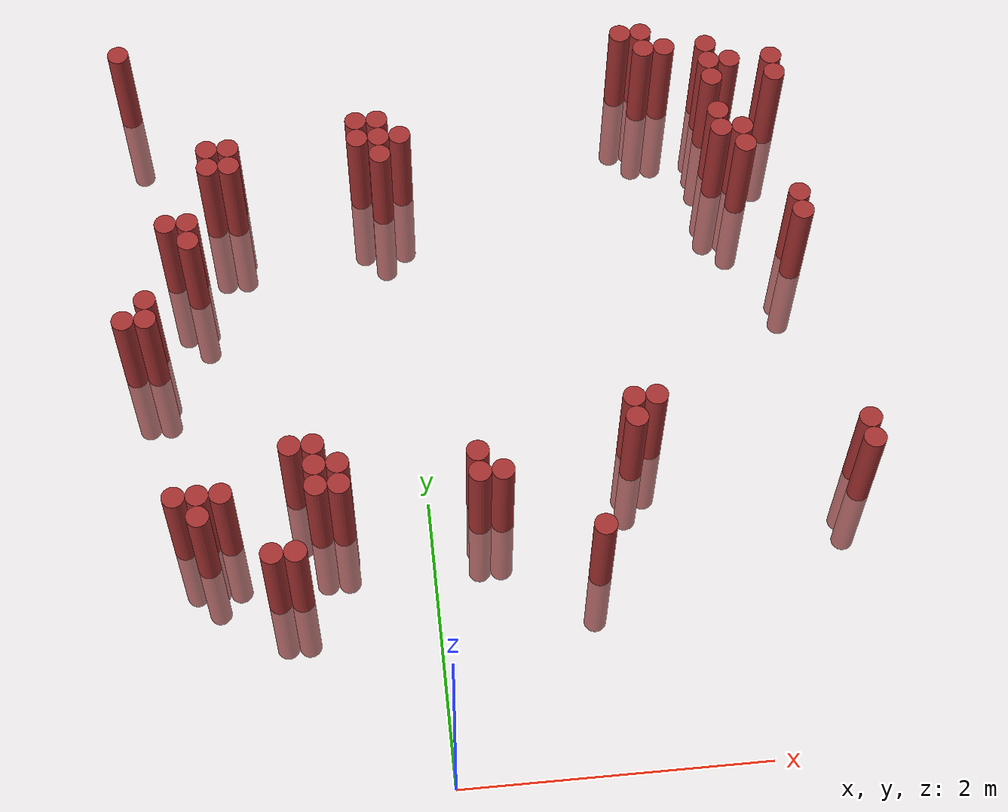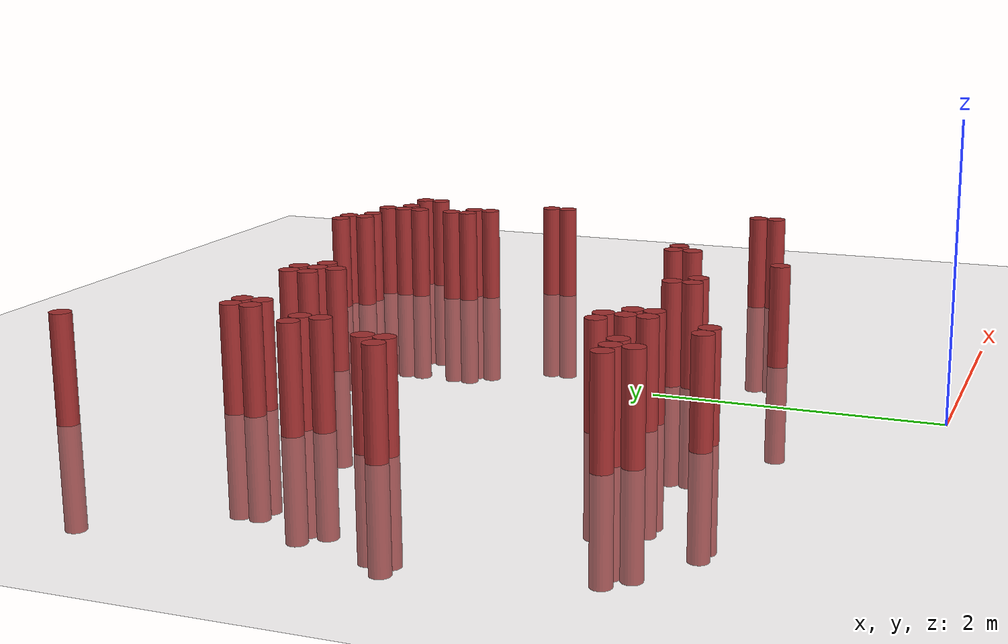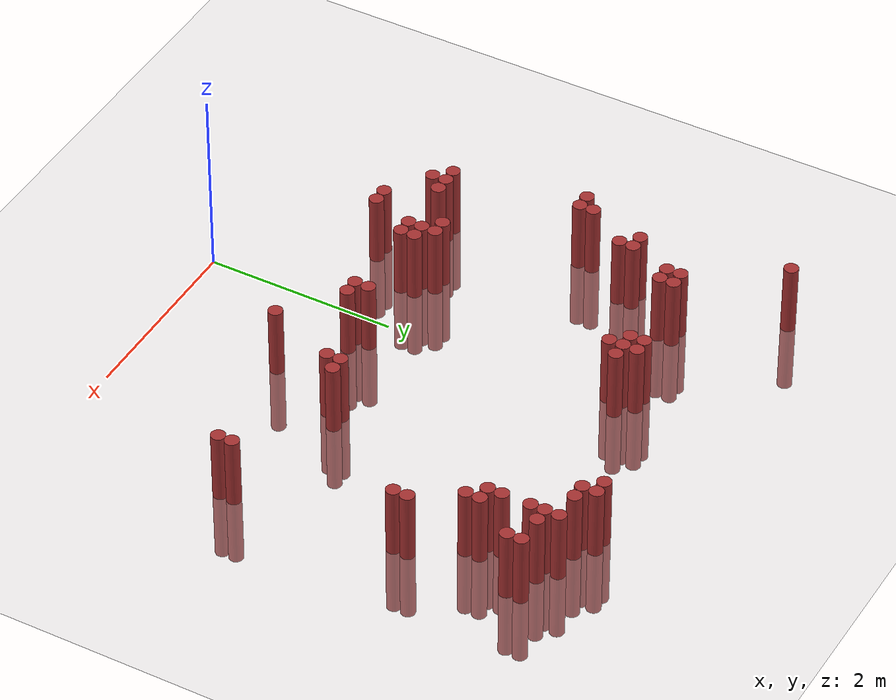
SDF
<sdf version="1.6">
 <world name="default">
  <model name="ground_plane">
   <static>1</static>
   <link name="link">
    <collision name="collision">
     <geometry><plane><normal>0 0 1</normal><size>100 100</size></plane></geometry>
     <surface><friction><ode><mu>100</mu><mu2>50</mu2></ode></friction></surface>
    </collision>
    <visual name="visual">
     <cast_shadows>0</cast_shadows>
     <geometry><plane><normal>0 0 1</normal><size>100 100</size></plane></geometry>
     <material>
      <script><uri>file://media/materials/scripts/gazebo.material</uri><name>Gazebo/Grey</name></script>
     </material>
    </visual>
   </link>
  </model>
  <model name="unit_cylinder_321">
   <static>1</static>
   <pose>-1.925000 3.175000 0.000000 0.000000 0.000000 0.000000</pose>
   <link name="link">
    <inertial>
     <mass>1</mass>
     <inertia><ixx>0.145833</ixx><ixy>0</ixy><ixz>0</ixz><iyy>0.145833</iyy><iyz>0</iyz><izz>0.125</izz></inertia>
    </inertial>
    <collision name="collision">
     <geometry><cylinder><radius>0.075000</radius><length>1.5</length></cylinder></geometry>
    </collision>
    <visual name="visual">
     <geometry><cylinder><radius>0.075000</radius><length>1.5</length></cylinder></geometry>
     <material>
      <ambient>0.648000 0.192000 0.192000 1</ambient>
      <diffuse>0.648000 0.192000 0.192000 1</diffuse>
     </material>
     <material>
      <script><name>Gazebo/Grey</name><uri>file://media/materials/scripts/gazebo.material</uri></script>
     </material>
    </visual>
   </link>
  </model>
  <model name="unit_cylinder_322">
   <static>1</static>
   <pose>-1.925000 5.425000 0.000000 0.000000 0.000000 0.000000</pose>
   <link name="link">
    <inertial>
     <mass>1</mass>
     <inertia><ixx>0.145833</ixx><ixy>0</ixy><ixz>0</ixz><iyy>0.145833</iyy><iyz>0</iyz><izz>0.125</izz></inertia>
    </inertial>
    <collision name="collision">
     <geometry><cylinder><radius>0.075000</radius><length>1.5</length></cylinder></geometry>
    </collision>
    <visual name="visual">
     <geometry><cylinder><radius>0.075000</radius><length>1.5</length></cylinder></geometry>
     <material>
      <ambient>0.648000 0.192000 0.192000 1</ambient>
      <diffuse>0.648000 0.192000 0.192000 1</diffuse>
     </material>
     <material>
      <script><name>Gazebo/Grey</name><uri>file://media/materials/scripts/gazebo.material</uri></script>
     </material>
    </visual>
   </link>
  </model>
  <model name="unit_cylinder_323">
   <static>1</static>
   <pose>-1.775000 3.175000 0.000000 0.000000 0.000000 0.000000</pose>
   <link name="link">
    <inertial>
     <mass>1</mass>
     <inertia><ixx>0.145833</ixx><ixy>0</ixy><ixz>0</ixz><iyy>0.145833</iyy><iyz>0</iyz><izz>0.125</izz></inertia>
    </inertial>
    <collision name="collision">
     <geometry><cylinder><radius>0.075000</radius><length>1.5</length></cylinder></geometry>
    </collision>
    <visual name="visual">
     <geometry><cylinder><radius>0.075000</radius><length>1.5</length></cylinder></geometry>
     <material>
      <ambient>0.648000 0.192000 0.192000 1</ambient>
      <diffuse>0.648000 0.192000 0.192000 1</diffuse>
     </material>
     <material>
      <script><name>Gazebo/Grey</name><uri>file://media/materials/scripts/gazebo.material</uri></script>
     </material>
    </visual>
   </link>
  </model>
  <model name="unit_cylinder_324">
   <static>1</static>
   <pose>-1.775000 3.325000 0.000000 0.000000 0.000000 0.000000</pose>
   <link name="link">
    <inertial>
     <mass>1</mass>
     <inertia><ixx>0.145833</ixx><ixy>0</ixy><ixz>0</ixz><iyy>0.145833</iyy><iyz>0</iyz><izz>0.125</izz></inertia>
    </inertial>
    <collision name="collision">
     <geometry><cylinder><radius>0.075000</radius><length>1.5</length></cylinder></geometry>
    </collision>
    <visual name="visual">
     <geometry><cylinder><radius>0.075000</radius><length>1.5</length></cylinder></geometry>
     <material>
      <ambient>0.648000 0.192000 0.192000 1</ambient>
      <diffuse>0.648000 0.192000 0.192000 1</diffuse>
     </material>
     <material>
      <script><name>Gazebo/Grey</name><uri>file://media/materials/scripts/gazebo.material</uri></script>
     </material>
    </visual>
   </link>
  </model>
  <model name="unit_cylinder_325">
   <static>1</static>
   <pose>-1.625000 1.825000 0.000000 0.000000 0.000000 0.000000</pose>
   <link name="link">
    <inertial>
     <mass>1</mass>
     <inertia><ixx>0.145833</ixx><ixy>0</ixy><ixz>0</ixz><iyy>0.145833</iyy><iyz>0</iyz><izz>0.125</izz></inertia>
    </inertial>
    <collision name="collision">
     <geometry><cylinder><radius>0.075000</radius><length>1.5</length></cylinder></geometry>
    </collision>
    <visual name="visual">
     <geometry><cylinder><radius>0.075000</radius><length>1.5</length></cylinder></geometry>
     <material>
      <ambient>0.648000 0.192000 0.192000 1</ambient>
      <diffuse>0.648000 0.192000 0.192000 1</diffuse>
     </material>
     <material>
      <script><name>Gazebo/Grey</name><uri>file://media/materials/scripts/gazebo.material</uri></script>
     </material>
    </visual>
   </link>
  </model>
  <model name="unit_cylinder_326">
   <static>1</static>
   <pose>-1.625000 3.925000 0.000000 0.000000 0.000000 0.000000</pose>
   <link name="link">
    <inertial>
     <mass>1</mass>
     <inertia><ixx>0.145833</ixx><ixy>0</ixy><ixz>0</ixz><iyy>0.145833</iyy><iyz>0</iyz><izz>0.125</izz></inertia>
    </inertial>
    <collision name="collision">
     <geometry><cylinder><radius>0.075000</radius><length>1.5</length></cylinder></geometry>
    </collision>
    <visual name="visual">
     <geometry><cylinder><radius>0.075000</radius><length>1.5</length></cylinder></geometry>
     <material>
      <ambient>0.648000 0.192000 0.192000 1</ambient>
      <diffuse>0.648000 0.192000 0.192000 1</diffuse>
     </material>
     <material>
      <script><name>Gazebo/Grey</name><uri>file://media/materials/scripts/gazebo.material</uri></script>
     </material>
    </visual>
   </link>
  </model>
  <model name="unit_cylinder_327">
   <static>1</static>
   <pose>-1.475000 1.675000 0.000000 0.000000 0.000000 0.000000</pose>
   <link name="link">
    <inertial>
     <mass>1</mass>
     <inertia><ixx>0.145833</ixx><ixy>0</ixy><ixz>0</ixz><iyy>0.145833</iyy><iyz>0</iyz><izz>0.125</izz></inertia>
    </inertial>
    <collision name="collision">
     <geometry><cylinder><radius>0.075000</radius><length>1.5</length></cylinder></geometry>
    </collision>
    <visual name="visual">
     <geometry><cylinder><radius>0.075000</radius><length>1.5</length></cylinder></geometry>
     <material>
      <ambient>0.648000 0.192000 0.192000 1</ambient>
      <diffuse>0.648000 0.192000 0.192000 1</diffuse>
     </material>
     <material>
      <script><name>Gazebo/Grey</name><uri>file://media/materials/scripts/gazebo.material</uri></script>
     </material>
    </visual>
   </link>
  </model>
  <model name="unit_cylinder_328">
   <static>1</static>
   <pose>-1.475000 1.825000 0.000000 0.000000 0.000000 0.000000</pose>
   <link name="link">
    <inertial>
     <mass>1</mass>
     <inertia><ixx>0.145833</ixx><ixy>0</ixy><ixz>0</ixz><iyy>0.145833</iyy><iyz>0</iyz><izz>0.125</izz></inertia>
    </inertial>
    <collision name="collision">
     <geometry><cylinder><radius>0.075000</radius><length>1.5</length></cylinder></geometry>
    </collision>
    <visual name="visual">
     <geometry><cylinder><radius>0.075000</radius><length>1.5</length></cylinder></geometry>
     <material>
      <ambient>0.648000 0.192000 0.192000 1</ambient>
      <diffuse>0.648000 0.192000 0.192000 1</diffuse>
     </material>
     <material>
      <script><name>Gazebo/Grey</name><uri>file://media/materials/scripts/gazebo.material</uri></script>
     </material>
    </visual>
   </link>
  </model>
  <model name="unit_cylinder_329">
   <static>1</static>
   <pose>-1.475000 3.775000 0.000000 0.000000 0.000000 0.000000</pose>
   <link name="link">
    <inertial>
     <mass>1</mass>
     <inertia><ixx>0.145833</ixx><ixy>0</ixy><ixz>0</ixz><iyy>0.145833</iyy><iyz>0</iyz><izz>0.125</izz></inertia>
    </inertial>
    <collision name="collision">
     <geometry><cylinder><radius>0.075000</radius><length>1.5</length></cylinder></geometry>
    </collision>
    <visual name="visual">
     <geometry><cylinder><radius>0.075000</radius><length>1.5</length></cylinder></geometry>
     <material>
      <ambient>0.648000 0.192000 0.192000 1</ambient>
      <diffuse>0.648000 0.192000 0.192000 1</diffuse>
     </material>
     <material>
      <script><name>Gazebo/Grey</name><uri>file://media/materials/scripts/gazebo.material</uri></script>
     </material>
    </visual>
   </link>
  </model>
  <model name="unit_cylinder_330">
   <static>1</static>
   <pose>-1.475000 3.925000 0.000000 0.000000 0.000000 0.000000</pose>
   <link name="link">
    <inertial>
     <mass>1</mass>
     <inertia><ixx>0.145833</ixx><ixy>0</ixy><ixz>0</ixz><iyy>0.145833</iyy><iyz>0</iyz><izz>0.125</izz></inertia>
    </inertial>
    <collision name="collision">
     <geometry><cylinder><radius>0.075000</radius><length>1.5</length></cylinder></geometry>
    </collision>
    <visual name="visual">
     <geometry><cylinder><radius>0.075000</radius><length>1.5</length></cylinder></geometry>
     <material>
      <ambient>0.648000 0.192000 0.192000 1</ambient>
      <diffuse>0.648000 0.192000 0.192000 1</diffuse>
     </material>
     <material>
      <script><name>Gazebo/Grey</name><uri>file://media/materials/scripts/gazebo.material</uri></script>
     </material>
    </visual>
   </link>
  </model>
  <model name="unit_cylinder_335">
   <static>1</static>
   <pose>-1.325000 1.825000 0.000000 0.000000 0.000000 0.000000</pose>
   <link name="link">
    <inertial>
     <mass>1</mass>
     <inertia><ixx>0.145833</ixx><ixy>0</ixy><ixz>0</ixz><iyy>0.145833</iyy><iyz>0</iyz><izz>0.125</izz></inertia>
    </inertial>
    <collision name="collision">
     <geometry><cylinder><radius>0.075000</radius><length>1.5</length></cylinder></geometry>
    </collision>
    <visual name="visual">
     <geometry><cylinder><radius>0.075000</radius><length>1.5</length></cylinder></geometry>
     <material>
      <ambient>0.648000 0.192000 0.192000 1</ambient>
      <diffuse>0.648000 0.192000 0.192000 1</diffuse>
     </material>
     <material>
      <script><name>Gazebo/Grey</name><uri>file://media/materials/scripts/gazebo.material</uri></script>
     </material>
    </visual>
   </link>
  </model>
  <model name="unit_cylinder_336">
   <static>1</static>
   <pose>-1.325000 4.375000 0.000000 0.000000 0.000000 0.000000</pose>
   <link name="link">
    <inertial>
     <mass>1</mass>
     <inertia><ixx>0.145833</ixx><ixy>0</ixy><ixz>0</ixz><iyy>0.145833</iyy><iyz>0</iyz><izz>0.125</izz></inertia>
    </inertial>
    <collision name="collision">
     <geometry><cylinder><radius>0.075000</radius><length>1.5</length></cylinder></geometry>
    </collision>
    <visual name="visual">
     <geometry><cylinder><radius>0.075000</radius><length>1.5</length></cylinder></geometry>
     <material>
      <ambient>0.648000 0.192000 0.192000 1</ambient>
      <diffuse>0.648000 0.192000 0.192000 1</diffuse>
     </material>
     <material>
      <script><name>Gazebo/Grey</name><uri>file://media/materials/scripts/gazebo.material</uri></script>
     </material>
    </visual>
   </link>
  </model>
  <model name="unit_cylinder_337">
   <static>1</static>
   <pose>-1.325000 4.525000 0.000000 0.000000 0.000000 0.000000</pose>
   <link name="link">
    <inertial>
     <mass>1</mass>
     <inertia><ixx>0.145833</ixx><ixy>0</ixy><ixz>0</ixz><iyy>0.145833</iyy><iyz>0</iyz><izz>0.125</izz></inertia>
    </inertial>
    <collision name="collision">
     <geometry><cylinder><radius>0.075000</radius><length>1.5</length></cylinder></geometry>
    </collision>
    <visual name="visual">
     <geometry><cylinder><radius>0.075000</radius><length>1.5</length></cylinder></geometry>
     <material>
      <ambient>0.648000 0.192000 0.192000 1</ambient>
      <diffuse>0.648000 0.192000 0.192000 1</diffuse>
     </material>
     <material>
      <script><name>Gazebo/Grey</name><uri>file://media/materials/scripts/gazebo.material</uri></script>
     </material>
    </visual>
   </link>
  </model>
  <model name="unit_cylinder_341">
   <static>1</static>
   <pose>-1.175000 4.375000 0.000000 0.000000 0.000000 0.000000</pose>
   <link name="link">
    <inertial>
     <mass>1</mass>
     <inertia><ixx>0.145833</ixx><ixy>0</ixy><ixz>0</ixz><iyy>0.145833</iyy><iyz>0</iyz><izz>0.125</izz></inertia>
    </inertial>
    <collision name="collision">
     <geometry><cylinder><radius>0.075000</radius><length>1.5</length></cylinder></geometry>
    </collision>
    <visual name="visual">
     <geometry><cylinder><radius>0.075000</radius><length>1.5</length></cylinder></geometry>
     <material>
      <ambient>0.648000 0.192000 0.192000 1</ambient>
      <diffuse>0.648000 0.192000 0.192000 1</diffuse>
     </material>
     <material>
      <script><name>Gazebo/Grey</name><uri>file://media/materials/scripts/gazebo.material</uri></script>
     </material>
    </visual>
   </link>
  </model>
  <model name="unit_cylinder_342">
   <static>1</static>
   <pose>-1.175000 4.525000 0.000000 0.000000 0.000000 0.000000</pose>
   <link name="link">
    <inertial>
     <mass>1</mass>
     <inertia><ixx>0.145833</ixx><ixy>0</ixy><ixz>0</ixz><iyy>0.145833</iyy><iyz>0</iyz><izz>0.125</izz></inertia>
    </inertial>
    <collision name="collision">
     <geometry><cylinder><radius>0.075000</radius><length>1.5</length></cylinder></geometry>
    </collision>
    <visual name="visual">
     <geometry><cylinder><radius>0.075000</radius><length>1.5</length></cylinder></geometry>
     <material>
      <ambient>0.648000 0.192000 0.192000 1</ambient>
      <diffuse>0.648000 0.192000 0.192000 1</diffuse>
     </material>
     <material>
      <script><name>Gazebo/Grey</name><uri>file://media/materials/scripts/gazebo.material</uri></script>
     </material>
    </visual>
   </link>
  </model>
  <model name="unit_cylinder_346">
   <static>1</static>
   <pose>-1.025000 1.375000 0.000000 0.000000 0.000000 0.000000</pose>
   <link name="link">
    <inertial>
     <mass>1</mass>
     <inertia><ixx>0.145833</ixx><ixy>0</ixy><ixz>0</ixz><iyy>0.145833</iyy><iyz>0</iyz><izz>0.125</izz></inertia>
    </inertial>
    <collision name="collision">
     <geometry><cylinder><radius>0.075000</radius><length>1.5</length></cylinder></geometry>
    </collision>
    <visual name="visual">
     <geometry><cylinder><radius>0.075000</radius><length>1.5</length></cylinder></geometry>
     <material>
      <ambient>0.648000 0.192000 0.192000 1</ambient>
      <diffuse>0.648000 0.192000 0.192000 1</diffuse>
     </material>
     <material>
      <script><name>Gazebo/Grey</name><uri>file://media/materials/scripts/gazebo.material</uri></script>
     </material>
    </visual>
   </link>
  </model>
  <model name="unit_cylinder_351">
   <static>1</static>
   <pose>-0.875000 1.375000 0.000000 0.000000 0.000000 0.000000</pose>
   <link name="link">
    <inertial>
     <mass>1</mass>
     <inertia><ixx>0.145833</ixx><ixy>0</ixy><ixz>0</ixz><iyy>0.145833</iyy><iyz>0</iyz><izz>0.125</izz></inertia>
    </inertial>
    <collision name="collision">
     <geometry><cylinder><radius>0.075000</radius><length>1.5</length></cylinder></geometry>
    </collision>
    <visual name="visual">
     <geometry><cylinder><radius>0.075000</radius><length>1.5</length></cylinder></geometry>
     <material>
      <ambient>0.648000 0.192000 0.192000 1</ambient>
      <diffuse>0.648000 0.192000 0.192000 1</diffuse>
     </material>
     <material>
      <script><name>Gazebo/Grey</name><uri>file://media/materials/scripts/gazebo.material</uri></script>
     </material>
    </visual>
   </link>
  </model>
  <model name="unit_cylinder_352">
   <static>1</static>
   <pose>-0.875000 2.125000 0.000000 0.000000 0.000000 0.000000</pose>
   <link name="link">
    <inertial>
     <mass>1</mass>
     <inertia><ixx>0.145833</ixx><ixy>0</ixy><ixz>0</ixz><iyy>0.145833</iyy><iyz>0</iyz><izz>0.125</izz></inertia>
    </inertial>
    <collision name="collision">
     <geometry><cylinder><radius>0.075000</radius><length>1.5</length></cylinder></geometry>
    </collision>
    <visual name="visual">
     <geometry><cylinder><radius>0.075000</radius><length>1.5</length></cylinder></geometry>
     <material>
      <ambient>0.648000 0.192000 0.192000 1</ambient>
      <diffuse>0.648000 0.192000 0.192000 1</diffuse>
     </material>
     <material>
      <script><name>Gazebo/Grey</name><uri>file://media/materials/scripts/gazebo.material</uri></script>
     </material>
    </visual>
   </link>
  </model>
  <model name="unit_cylinder_355">
   <static>1</static>
   <pose>-0.725000 1.825000 0.000000 0.000000 0.000000 0.000000</pose>
   <link name="link">
    <inertial>
     <mass>1</mass>
     <inertia><ixx>0.145833</ixx><ixy>0</ixy><ixz>0</ixz><iyy>0.145833</iyy><iyz>0</iyz><izz>0.125</izz></inertia>
    </inertial>
    <collision name="collision">
     <geometry><cylinder><radius>0.075000</radius><length>1.5</length></cylinder></geometry>
    </collision>
    <visual name="visual">
     <geometry><cylinder><radius>0.075000</radius><length>1.5</length></cylinder></geometry>
     <material>
      <ambient>0.648000 0.192000 0.192000 1</ambient>
      <diffuse>0.648000 0.192000 0.192000 1</diffuse>
     </material>
     <material>
      <script><name>Gazebo/Grey</name><uri>file://media/materials/scripts/gazebo.material</uri></script>
     </material>
    </visual>
   </link>
  </model>
  <model name="unit_cylinder_356">
   <static>1</static>
   <pose>-0.725000 1.975000 0.000000 0.000000 0.000000 0.000000</pose>
   <link name="link">
    <inertial>
     <mass>1</mass>
     <inertia><ixx>0.145833</ixx><ixy>0</ixy><ixz>0</ixz><iyy>0.145833</iyy><iyz>0</iyz><izz>0.125</izz></inertia>
    </inertial>
    <collision name="collision">
     <geometry><cylinder><radius>0.075000</radius><length>1.5</length></cylinder></geometry>
    </collision>
    <visual name="visual">
     <geometry><cylinder><radius>0.075000</radius><length>1.5</length></cylinder></geometry>
     <material>
      <ambient>0.648000 0.192000 0.192000 1</ambient>
      <diffuse>0.648000 0.192000 0.192000 1</diffuse>
     </material>
     <material>
      <script><name>Gazebo/Grey</name><uri>file://media/materials/scripts/gazebo.material</uri></script>
     </material>
    </visual>
   </link>
  </model>
  <model name="unit_cylinder_357">
   <static>1</static>
   <pose>-0.725000 2.125000 0.000000 0.000000 0.000000 0.000000</pose>
   <link name="link">
    <inertial>
     <mass>1</mass>
     <inertia><ixx>0.145833</ixx><ixy>0</ixy><ixz>0</ixz><iyy>0.145833</iyy><iyz>0</iyz><izz>0.125</izz></inertia>
    </inertial>
    <collision name="collision">
     <geometry><cylinder><radius>0.075000</radius><length>1.5</length></cylinder></geometry>
    </collision>
    <visual name="visual">
     <geometry><cylinder><radius>0.075000</radius><length>1.5</length></cylinder></geometry>
     <material>
      <ambient>0.648000 0.192000 0.192000 1</ambient>
      <diffuse>0.648000 0.192000 0.192000 1</diffuse>
     </material>
     <material>
      <script><name>Gazebo/Grey</name><uri>file://media/materials/scripts/gazebo.material</uri></script>
     </material>
    </visual>
   </link>
  </model>
  <model name="unit_cylinder_360">
   <static>1</static>
   <pose>-0.575000 1.825000 0.000000 0.000000 0.000000 0.000000</pose>
   <link name="link">
    <inertial>
     <mass>1</mass>
     <inertia><ixx>0.145833</ixx><ixy>0</ixy><ixz>0</ixz><iyy>0.145833</iyy><iyz>0</iyz><izz>0.125</izz></inertia>
    </inertial>
    <collision name="collision">
     <geometry><cylinder><radius>0.075000</radius><length>1.5</length></cylinder></geometry>
    </collision>
    <visual name="visual">
     <geometry><cylinder><radius>0.075000</radius><length>1.5</length></cylinder></geometry>
     <material>
      <ambient>0.648000 0.192000 0.192000 1</ambient>
      <diffuse>0.648000 0.192000 0.192000 1</diffuse>
     </material>
     <material>
      <script><name>Gazebo/Grey</name><uri>file://media/materials/scripts/gazebo.material</uri></script>
     </material>
    </visual>
   </link>
  </model>
  <model name="unit_cylinder_361">
   <static>1</static>
   <pose>-0.575000 1.975000 0.000000 0.000000 0.000000 0.000000</pose>
   <link name="link">
    <inertial>
     <mass>1</mass>
     <inertia><ixx>0.145833</ixx><ixy>0</ixy><ixz>0</ixz><iyy>0.145833</iyy><iyz>0</iyz><izz>0.125</izz></inertia>
    </inertial>
    <collision name="collision">
     <geometry><cylinder><radius>0.075000</radius><length>1.5</length></cylinder></geometry>
    </collision>
    <visual name="visual">
     <geometry><cylinder><radius>0.075000</radius><length>1.5</length></cylinder></geometry>
     <material>
      <ambient>0.648000 0.192000 0.192000 1</ambient>
      <diffuse>0.648000 0.192000 0.192000 1</diffuse>
     </material>
     <material>
      <script><name>Gazebo/Grey</name><uri>file://media/materials/scripts/gazebo.material</uri></script>
     </material>
    </visual>
   </link>
  </model>
  <model name="unit_cylinder_362">
   <static>1</static>
   <pose>-0.275000 4.525000 0.000000 0.000000 0.000000 0.000000</pose>
   <link name="link">
    <inertial>
     <mass>1</mass>
     <inertia><ixx>0.145833</ixx><ixy>0</ixy><ixz>0</ixz><iyy>0.145833</iyy><iyz>0</iyz><izz>0.125</izz></inertia>
    </inertial>
    <collision name="collision">
     <geometry><cylinder><radius>0.075000</radius><length>1.5</length></cylinder></geometry>
    </collision>
    <visual name="visual">
     <geometry><cylinder><radius>0.075000</radius><length>1.5</length></cylinder></geometry>
     <material>
      <ambient>0.648000 0.192000 0.192000 1</ambient>
      <diffuse>0.648000 0.192000 0.192000 1</diffuse>
     </material>
     <material>
      <script><name>Gazebo/Grey</name><uri>file://media/materials/scripts/gazebo.material</uri></script>
     </material>
    </visual>
   </link>
  </model>
  <model name="unit_cylinder_363">
   <static>1</static>
   <pose>-0.275000 4.675000 0.000000 0.000000 0.000000 0.000000</pose>
   <link name="link">
    <inertial>
     <mass>1</mass>
     <inertia><ixx>0.145833</ixx><ixy>0</ixy><ixz>0</ixz><iyy>0.145833</iyy><iyz>0</iyz><izz>0.125</izz></inertia>
    </inertial>
    <collision name="collision">
     <geometry><cylinder><radius>0.075000</radius><length>1.5</length></cylinder></geometry>
    </collision>
    <visual name="visual">
     <geometry><cylinder><radius>0.075000</radius><length>1.5</length></cylinder></geometry>
     <material>
      <ambient>0.648000 0.192000 0.192000 1</ambient>
      <diffuse>0.648000 0.192000 0.192000 1</diffuse>
     </material>
     <material>
      <script><name>Gazebo/Grey</name><uri>file://media/materials/scripts/gazebo.material</uri></script>
     </material>
    </visual>
   </link>
  </model>
  <model name="unit_cylinder_364">
   <static>1</static>
   <pose>-0.125000 4.375000 0.000000 0.000000 0.000000 0.000000</pose>
   <link name="link">
    <inertial>
     <mass>1</mass>
     <inertia><ixx>0.145833</ixx><ixy>0</ixy><ixz>0</ixz><iyy>0.145833</iyy><iyz>0</iyz><izz>0.125</izz></inertia>
    </inertial>
    <collision name="collision">
     <geometry><cylinder><radius>0.075000</radius><length>1.5</length></cylinder></geometry>
    </collision>
    <visual name="visual">
     <geometry><cylinder><radius>0.075000</radius><length>1.5</length></cylinder></geometry>
     <material>
      <ambient>0.648000 0.192000 0.192000 1</ambient>
      <diffuse>0.648000 0.192000 0.192000 1</diffuse>
     </material>
     <material>
      <script><name>Gazebo/Grey</name><uri>file://media/materials/scripts/gazebo.material</uri></script>
     </material>
    </visual>
   </link>
  </model>
  <model name="unit_cylinder_365">
   <static>1</static>
   <pose>-0.125000 4.525000 0.000000 0.000000 0.000000 0.000000</pose>
   <link name="link">
    <inertial>
     <mass>1</mass>
     <inertia><ixx>0.145833</ixx><ixy>0</ixy><ixz>0</ixz><iyy>0.145833</iyy><iyz>0</iyz><izz>0.125</izz></inertia>
    </inertial>
    <collision name="collision">
     <geometry><cylinder><radius>0.075000</radius><length>1.5</length></cylinder></geometry>
    </collision>
    <visual name="visual">
     <geometry><cylinder><radius>0.075000</radius><length>1.5</length></cylinder></geometry>
     <material>
      <ambient>0.648000 0.192000 0.192000 1</ambient>
      <diffuse>0.648000 0.192000 0.192000 1</diffuse>
     </material>
     <material>
      <script><name>Gazebo/Grey</name><uri>file://media/materials/scripts/gazebo.material</uri></script>
     </material>
    </visual>
   </link>
  </model>
  <model name="unit_cylinder_366">
   <static>1</static>
   <pose>-0.125000 4.675000 0.000000 0.000000 0.000000 0.000000</pose>
   <link name="link">
    <inertial>
     <mass>1</mass>
     <inertia><ixx>0.145833</ixx><ixy>0</ixy><ixz>0</ixz><iyy>0.145833</iyy><iyz>0</iyz><izz>0.125</izz></inertia>
    </inertial>
    <collision name="collision">
     <geometry><cylinder><radius>0.075000</radius><length>1.5</length></cylinder></geometry>
    </collision>
    <visual name="visual">
     <geometry><cylinder><radius>0.075000</radius><length>1.5</length></cylinder></geometry>
     <material>
      <ambient>0.648000 0.192000 0.192000 1</ambient>
      <diffuse>0.648000 0.192000 0.192000 1</diffuse>
     </material>
     <material>
      <script><name>Gazebo/Grey</name><uri>file://media/materials/scripts/gazebo.material</uri></script>
     </material>
    </visual>
   </link>
  </model>
  <model name="unit_cylinder_367">
   <static>1</static>
   <pose>0.025000 4.525000 0.000000 0.000000 0.000000 0.000000</pose>
   <link name="link">
    <inertial>
     <mass>1</mass>
     <inertia><ixx>0.145833</ixx><ixy>0</ixy><ixz>0</ixz><iyy>0.145833</iyy><iyz>0</iyz><izz>0.125</izz></inertia>
    </inertial>
    <collision name="collision">
     <geometry><cylinder><radius>0.075000</radius><length>1.5</length></cylinder></geometry>
    </collision>
    <visual name="visual">
     <geometry><cylinder><radius>0.075000</radius><length>1.5</length></cylinder></geometry>
     <material>
      <ambient>0.648000 0.192000 0.192000 1</ambient>
      <diffuse>0.648000 0.192000 0.192000 1</diffuse>
     </material>
     <material>
      <script><name>Gazebo/Grey</name><uri>file://media/materials/scripts/gazebo.material</uri></script>
     </material>
    </visual>
   </link>
  </model>
  <model name="unit_cylinder_371">
   <static>1</static>
   <pose>0.325000 1.825000 0.000000 0.000000 0.000000 0.000000</pose>
   <link name="link">
    <inertial>
     <mass>1</mass>
     <inertia><ixx>0.145833</ixx><ixy>0</ixy><ixz>0</ixz><iyy>0.145833</iyy><iyz>0</iyz><izz>0.125</izz></inertia>
    </inertial>
    <collision name="collision">
     <geometry><cylinder><radius>0.075000</radius><length>1.5</length></cylinder></geometry>
    </collision>
    <visual name="visual">
     <geometry><cylinder><radius>0.075000</radius><length>1.5</length></cylinder></geometry>
     <material>
      <ambient>0.648000 0.192000 0.192000 1</ambient>
      <diffuse>0.648000 0.192000 0.192000 1</diffuse>
     </material>
     <material>
      <script><name>Gazebo/Grey</name><uri>file://media/materials/scripts/gazebo.material</uri></script>
     </material>
    </visual>
   </link>
  </model>
  <model name="unit_cylinder_372">
   <static>1</static>
   <pose>0.325000 1.975000 0.000000 0.000000 0.000000 0.000000</pose>
   <link name="link">
    <inertial>
     <mass>1</mass>
     <inertia><ixx>0.145833</ixx><ixy>0</ixy><ixz>0</ixz><iyy>0.145833</iyy><iyz>0</iyz><izz>0.125</izz></inertia>
    </inertial>
    <collision name="collision">
     <geometry><cylinder><radius>0.075000</radius><length>1.5</length></cylinder></geometry>
    </collision>
    <visual name="visual">
     <geometry><cylinder><radius>0.075000</radius><length>1.5</length></cylinder></geometry>
     <material>
      <ambient>0.648000 0.192000 0.192000 1</ambient>
      <diffuse>0.648000 0.192000 0.192000 1</diffuse>
     </material>
     <material>
      <script><name>Gazebo/Grey</name><uri>file://media/materials/scripts/gazebo.material</uri></script>
     </material>
    </visual>
   </link>
  </model>
  <model name="unit_cylinder_378">
   <static>1</static>
   <pose>0.475000 1.825000 0.000000 0.000000 0.000000 0.000000</pose>
   <link name="link">
    <inertial>
     <mass>1</mass>
     <inertia><ixx>0.145833</ixx><ixy>0</ixy><ixz>0</ixz><iyy>0.145833</iyy><iyz>0</iyz><izz>0.125</izz></inertia>
    </inertial>
    <collision name="collision">
     <geometry><cylinder><radius>0.075000</radius><length>1.5</length></cylinder></geometry>
    </collision>
    <visual name="visual">
     <geometry><cylinder><radius>0.075000</radius><length>1.5</length></cylinder></geometry>
     <material>
      <ambient>0.648000 0.192000 0.192000 1</ambient>
      <diffuse>0.648000 0.192000 0.192000 1</diffuse>
     </material>
     <material>
      <script><name>Gazebo/Grey</name><uri>file://media/materials/scripts/gazebo.material</uri></script>
     </material>
    </visual>
   </link>
  </model>
  <model name="unit_cylinder_395">
   <static>1</static>
   <pose>1.075000 1.375000 0.000000 0.000000 0.000000 0.000000</pose>
   <link name="link">
    <inertial>
     <mass>1</mass>
     <inertia><ixx>0.145833</ixx><ixy>0</ixy><ixz>0</ixz><iyy>0.145833</iyy><iyz>0</iyz><izz>0.125</izz></inertia>
    </inertial>
    <collision name="collision">
     <geometry><cylinder><radius>0.075000</radius><length>1.5</length></cylinder></geometry>
    </collision>
    <visual name="visual">
     <geometry><cylinder><radius>0.075000</radius><length>1.5</length></cylinder></geometry>
     <material>
      <ambient>0.648000 0.192000 0.192000 1</ambient>
      <diffuse>0.648000 0.192000 0.192000 1</diffuse>
     </material>
     <material>
      <script><name>Gazebo/Grey</name><uri>file://media/materials/scripts/gazebo.material</uri></script>
     </material>
    </visual>
   </link>
  </model>
  <model name="unit_cylinder_408">
   <static>1</static>
   <pose>1.375000 2.125000 0.000000 0.000000 0.000000 0.000000</pose>
   <link name="link">
    <inertial>
     <mass>1</mass>
     <inertia><ixx>0.145833</ixx><ixy>0</ixy><ixz>0</ixz><iyy>0.145833</iyy><iyz>0</iyz><izz>0.125</izz></inertia>
    </inertial>
    <collision name="collision">
     <geometry><cylinder><radius>0.075000</radius><length>1.5</length></cylinder></geometry>
    </collision>
    <visual name="visual">
     <geometry><cylinder><radius>0.075000</radius><length>1.5</length></cylinder></geometry>
     <material>
      <ambient>0.648000 0.192000 0.192000 1</ambient>
      <diffuse>0.648000 0.192000 0.192000 1</diffuse>
     </material>
     <material>
      <script><name>Gazebo/Grey</name><uri>file://media/materials/scripts/gazebo.material</uri></script>
     </material>
    </visual>
   </link>
  </model>
  <model name="unit_cylinder_409">
   <static>1</static>
   <pose>1.375000 2.275000 0.000000 0.000000 0.000000 0.000000</pose>
   <link name="link">
    <inertial>
     <mass>1</mass>
     <inertia><ixx>0.145833</ixx><ixy>0</ixy><ixz>0</ixz><iyy>0.145833</iyy><iyz>0</iyz><izz>0.125</izz></inertia>
    </inertial>
    <collision name="collision">
     <geometry><cylinder><radius>0.075000</radius><length>1.5</length></cylinder></geometry>
    </collision>
    <visual name="visual">
     <geometry><cylinder><radius>0.075000</radius><length>1.5</length></cylinder></geometry>
     <material>
      <ambient>0.648000 0.192000 0.192000 1</ambient>
      <diffuse>0.648000 0.192000 0.192000 1</diffuse>
     </material>
     <material>
      <script><name>Gazebo/Grey</name><uri>file://media/materials/scripts/gazebo.material</uri></script>
     </material>
    </visual>
   </link>
  </model>
  <model name="unit_cylinder_414">
   <static>1</static>
   <pose>1.525000 2.275000 0.000000 0.000000 0.000000 0.000000</pose>
   <link name="link">
    <inertial>
     <mass>1</mass>
     <inertia><ixx>0.145833</ixx><ixy>0</ixy><ixz>0</ixz><iyy>0.145833</iyy><iyz>0</iyz><izz>0.125</izz></inertia>
    </inertial>
    <collision name="collision">
     <geometry><cylinder><radius>0.075000</radius><length>1.5</length></cylinder></geometry>
    </collision>
    <visual name="visual">
     <geometry><cylinder><radius>0.075000</radius><length>1.5</length></cylinder></geometry>
     <material>
      <ambient>0.648000 0.192000 0.192000 1</ambient>
      <diffuse>0.648000 0.192000 0.192000 1</diffuse>
     </material>
     <material>
      <script><name>Gazebo/Grey</name><uri>file://media/materials/scripts/gazebo.material</uri></script>
     </material>
    </visual>
   </link>
  </model>
  <model name="unit_cylinder_418">
   <static>1</static>
   <pose>1.675000 5.275000 0.000000 0.000000 0.000000 0.000000</pose>
   <link name="link">
    <inertial>
     <mass>1</mass>
     <inertia><ixx>0.145833</ixx><ixy>0</ixy><ixz>0</ixz><iyy>0.145833</iyy><iyz>0</iyz><izz>0.125</izz></inertia>
    </inertial>
    <collision name="collision">
     <geometry><cylinder><radius>0.075000</radius><length>1.5</length></cylinder></geometry>
    </collision>
    <visual name="visual">
     <geometry><cylinder><radius>0.075000</radius><length>1.5</length></cylinder></geometry>
     <material>
      <ambient>0.648000 0.192000 0.192000 1</ambient>
      <diffuse>0.648000 0.192000 0.192000 1</diffuse>
     </material>
     <material>
      <script><name>Gazebo/Grey</name><uri>file://media/materials/scripts/gazebo.material</uri></script>
     </material>
    </visual>
   </link>
  </model>
  <model name="unit_cylinder_421">
   <static>1</static>
   <pose>1.825000 5.125000 0.000000 0.000000 0.000000 0.000000</pose>
   <link name="link">
    <inertial>
     <mass>1</mass>
     <inertia><ixx>0.145833</ixx><ixy>0</ixy><ixz>0</ixz><iyy>0.145833</iyy><iyz>0</iyz><izz>0.125</izz></inertia>
    </inertial>
    <collision name="collision">
     <geometry><cylinder><radius>0.075000</radius><length>1.5</length></cylinder></geometry>
    </collision>
    <visual name="visual">
     <geometry><cylinder><radius>0.075000</radius><length>1.5</length></cylinder></geometry>
     <material>
      <ambient>0.648000 0.192000 0.192000 1</ambient>
      <diffuse>0.648000 0.192000 0.192000 1</diffuse>
     </material>
     <material>
      <script><name>Gazebo/Grey</name><uri>file://media/materials/scripts/gazebo.material</uri></script>
     </material>
    </visual>
   </link>
  </model>
  <model name="unit_cylinder_422">
   <static>1</static>
   <pose>1.825000 5.275000 0.000000 0.000000 0.000000 0.000000</pose>
   <link name="link">
    <inertial>
     <mass>1</mass>
     <inertia><ixx>0.145833</ixx><ixy>0</ixy><ixz>0</ixz><iyy>0.145833</iyy><iyz>0</iyz><izz>0.125</izz></inertia>
    </inertial>
    <collision name="collision">
     <geometry><cylinder><radius>0.075000</radius><length>1.5</length></cylinder></geometry>
    </collision>
    <visual name="visual">
     <geometry><cylinder><radius>0.075000</radius><length>1.5</length></cylinder></geometry>
     <material>
      <ambient>0.648000 0.192000 0.192000 1</ambient>
      <diffuse>0.648000 0.192000 0.192000 1</diffuse>
     </material>
     <material>
      <script><name>Gazebo/Grey</name><uri>file://media/materials/scripts/gazebo.material</uri></script>
     </material>
    </visual>
   </link>
  </model>
  <model name="unit_cylinder_423">
   <static>1</static>
   <pose>1.975000 5.125000 0.000000 0.000000 0.000000 0.000000</pose>
   <link name="link">
    <inertial>
     <mass>1</mass>
     <inertia><ixx>0.145833</ixx><ixy>0</ixy><ixz>0</ixz><iyy>0.145833</iyy><iyz>0</iyz><izz>0.125</izz></inertia>
    </inertial>
    <collision name="collision">
     <geometry><cylinder><radius>0.075000</radius><length>1.5</length></cylinder></geometry>
    </collision>
    <visual name="visual">
     <geometry><cylinder><radius>0.075000</radius><length>1.5</length></cylinder></geometry>
     <material>
      <ambient>0.648000 0.192000 0.192000 1</ambient>
      <diffuse>0.648000 0.192000 0.192000 1</diffuse>
     </material>
     <material>
      <script><name>Gazebo/Grey</name><uri>file://media/materials/scripts/gazebo.material</uri></script>
     </material>
    </visual>
   </link>
  </model>
  <model name="unit_cylinder_424">
   <static>1</static>
   <pose>2.275000 4.375000 0.000000 0.000000 0.000000 0.000000</pose>
   <link name="link">
    <inertial>
     <mass>1</mass>
     <inertia><ixx>0.145833</ixx><ixy>0</ixy><ixz>0</ixz><iyy>0.145833</iyy><iyz>0</iyz><izz>0.125</izz></inertia>
    </inertial>
    <collision name="collision">
     <geometry><cylinder><radius>0.075000</radius><length>1.5</length></cylinder></geometry>
    </collision>
    <visual name="visual">
     <geometry><cylinder><radius>0.075000</radius><length>1.5</length></cylinder></geometry>
     <material>
      <ambient>0.648000 0.192000 0.192000 1</ambient>
      <diffuse>0.648000 0.192000 0.192000 1</diffuse>
     </material>
     <material>
      <script><name>Gazebo/Grey</name><uri>file://media/materials/scripts/gazebo.material</uri></script>
     </material>
    </visual>
   </link>
  </model>
  <model name="unit_cylinder_425">
   <static>1</static>
   <pose>2.275000 4.525000 0.000000 0.000000 0.000000 0.000000</pose>
   <link name="link">
    <inertial>
     <mass>1</mass>
     <inertia><ixx>0.145833</ixx><ixy>0</ixy><ixz>0</ixz><iyy>0.145833</iyy><iyz>0</iyz><izz>0.125</izz></inertia>
    </inertial>
    <collision name="collision">
     <geometry><cylinder><radius>0.075000</radius><length>1.5</length></cylinder></geometry>
    </collision>
    <visual name="visual">
     <geometry><cylinder><radius>0.075000</radius><length>1.5</length></cylinder></geometry>
     <material>
      <ambient>0.648000 0.192000 0.192000 1</ambient>
      <diffuse>0.648000 0.192000 0.192000 1</diffuse>
     </material>
     <material>
      <script><name>Gazebo/Grey</name><uri>file://media/materials/scripts/gazebo.material</uri></script>
     </material>
    </visual>
   </link>
  </model>
  <model name="unit_cylinder_426">
   <static>1</static>
   <pose>2.275000 4.825000 0.000000 0.000000 0.000000 0.000000</pose>
   <link name="link">
    <inertial>
     <mass>1</mass>
     <inertia><ixx>0.145833</ixx><ixy>0</ixy><ixz>0</ixz><iyy>0.145833</iyy><iyz>0</iyz><izz>0.125</izz></inertia>
    </inertial>
    <collision name="collision">
     <geometry><cylinder><radius>0.075000</radius><length>1.5</length></cylinder></geometry>
    </collision>
    <visual name="visual">
     <geometry><cylinder><radius>0.075000</radius><length>1.5</length></cylinder></geometry>
     <material>
      <ambient>0.648000 0.192000 0.192000 1</ambient>
      <diffuse>0.648000 0.192000 0.192000 1</diffuse>
     </material>
     <material>
      <script><name>Gazebo/Grey</name><uri>file://media/materials/scripts/gazebo.material</uri></script>
     </material>
    </visual>
   </link>
  </model>
  <model name="unit_cylinder_427">
   <static>1</static>
   <pose>2.275000 4.975000 0.000000 0.000000 0.000000 0.000000</pose>
   <link name="link">
    <inertial>
     <mass>1</mass>
     <inertia><ixx>0.145833</ixx><ixy>0</ixy><ixz>0</ixz><iyy>0.145833</iyy><iyz>0</iyz><izz>0.125</izz></inertia>
    </inertial>
    <collision name="collision">
     <geometry><cylinder><radius>0.075000</radius><length>1.5</length></cylinder></geometry>
    </collision>
    <visual name="visual">
     <geometry><cylinder><radius>0.075000</radius><length>1.5</length></cylinder></geometry>
     <material>
      <ambient>0.648000 0.192000 0.192000 1</ambient>
      <diffuse>0.648000 0.192000 0.192000 1</diffuse>
     </material>
     <material>
      <script><name>Gazebo/Grey</name><uri>file://media/materials/scripts/gazebo.material</uri></script>
     </material>
    </visual>
   </link>
  </model>
  <model name="unit_cylinder_428">
   <static>1</static>
   <pose>2.275000 5.125000 0.000000 0.000000 0.000000 0.000000</pose>
   <link name="link">
    <inertial>
     <mass>1</mass>
     <inertia><ixx>0.145833</ixx><ixy>0</ixy><ixz>0</ixz><iyy>0.145833</iyy><iyz>0</iyz><izz>0.125</izz></inertia>
    </inertial>
    <collision name="collision">
     <geometry><cylinder><radius>0.075000</radius><length>1.5</length></cylinder></geometry>
    </collision>
    <visual name="visual">
     <geometry><cylinder><radius>0.075000</radius><length>1.5</length></cylinder></geometry>
     <material>
      <ambient>0.648000 0.192000 0.192000 1</ambient>
      <diffuse>0.648000 0.192000 0.192000 1</diffuse>
     </material>
     <material>
      <script><name>Gazebo/Grey</name><uri>file://media/materials/scripts/gazebo.material</uri></script>
     </material>
    </visual>
   </link>
  </model>
  <model name="unit_cylinder_429">
   <static>1</static>
   <pose>2.425000 4.225000 0.000000 0.000000 0.000000 0.000000</pose>
   <link name="link">
    <inertial>
     <mass>1</mass>
     <inertia><ixx>0.145833</ixx><ixy>0</ixy><ixz>0</ixz><iyy>0.145833</iyy><iyz>0</iyz><izz>0.125</izz></inertia>
    </inertial>
    <collision name="collision">
     <geometry><cylinder><radius>0.075000</radius><length>1.5</length></cylinder></geometry>
    </collision>
    <visual name="visual">
     <geometry><cylinder><radius>0.075000</radius><length>1.5</length></cylinder></geometry>
     <material>
      <ambient>0.648000 0.192000 0.192000 1</ambient>
      <diffuse>0.648000 0.192000 0.192000 1</diffuse>
     </material>
     <material>
      <script><name>Gazebo/Grey</name><uri>file://media/materials/scripts/gazebo.material</uri></script>
     </material>
    </visual>
   </link>
  </model>
  <model name="unit_cylinder_430">
   <static>1</static>
   <pose>2.425000 4.375000 0.000000 0.000000 0.000000 0.000000</pose>
   <link name="link">
    <inertial>
     <mass>1</mass>
     <inertia><ixx>0.145833</ixx><ixy>0</ixy><ixz>0</ixz><iyy>0.145833</iyy><iyz>0</iyz><izz>0.125</izz></inertia>
    </inertial>
    <collision name="collision">
     <geometry><cylinder><radius>0.075000</radius><length>1.5</length></cylinder></geometry>
    </collision>
    <visual name="visual">
     <geometry><cylinder><radius>0.075000</radius><length>1.5</length></cylinder></geometry>
     <material>
      <ambient>0.648000 0.192000 0.192000 1</ambient>
      <diffuse>0.648000 0.192000 0.192000 1</diffuse>
     </material>
     <material>
      <script><name>Gazebo/Grey</name><uri>file://media/materials/scripts/gazebo.material</uri></script>
     </material>
    </visual>
   </link>
  </model>
  <model name="unit_cylinder_431">
   <static>1</static>
   <pose>2.425000 4.975000 0.000000 0.000000 0.000000 0.000000</pose>
   <link name="link">
    <inertial>
     <mass>1</mass>
     <inertia><ixx>0.145833</ixx><ixy>0</ixy><ixz>0</ixz><iyy>0.145833</iyy><iyz>0</iyz><izz>0.125</izz></inertia>
    </inertial>
    <collision name="collision">
     <geometry><cylinder><radius>0.075000</radius><length>1.5</length></cylinder></geometry>
    </collision>
    <visual name="visual">
     <geometry><cylinder><radius>0.075000</radius><length>1.5</length></cylinder></geometry>
     <material>
      <ambient>0.648000 0.192000 0.192000 1</ambient>
      <diffuse>0.648000 0.192000 0.192000 1</diffuse>
     </material>
     <material>
      <script><name>Gazebo/Grey</name><uri>file://media/materials/scripts/gazebo.material</uri></script>
     </material>
    </visual>
   </link>
  </model>
  <model name="unit_cylinder_432">
   <static>1</static>
   <pose>2.725000 3.625000 0.000000 0.000000 0.000000 0.000000</pose>
   <link name="link">
    <inertial>
     <mass>1</mass>
     <inertia><ixx>0.145833</ixx><ixy>0</ixy><ixz>0</ixz><iyy>0.145833</iyy><iyz>0</iyz><izz>0.125</izz></inertia>
    </inertial>
    <collision name="collision">
     <geometry><cylinder><radius>0.075000</radius><length>1.5</length></cylinder></geometry>
    </collision>
    <visual name="visual">
     <geometry><cylinder><radius>0.075000</radius><length>1.5</length></cylinder></geometry>
     <material>
      <ambient>0.648000 0.192000 0.192000 1</ambient>
      <diffuse>0.648000 0.192000 0.192000 1</diffuse>
     </material>
     <material>
      <script><name>Gazebo/Grey</name><uri>file://media/materials/scripts/gazebo.material</uri></script>
     </material>
    </visual>
   </link>
  </model>
  <model name="unit_cylinder_433">
   <static>1</static>
   <pose>2.725000 3.775000 0.000000 0.000000 0.000000 0.000000</pose>
   <link name="link">
    <inertial>
     <mass>1</mass>
     <inertia><ixx>0.145833</ixx><ixy>0</ixy><ixz>0</ixz><iyy>0.145833</iyy><iyz>0</iyz><izz>0.125</izz></inertia>
    </inertial>
    <collision name="collision">
     <geometry><cylinder><radius>0.075000</radius><length>1.5</length></cylinder></geometry>
    </collision>
    <visual name="visual">
     <geometry><cylinder><radius>0.075000</radius><length>1.5</length></cylinder></geometry>
     <material>
      <ambient>0.648000 0.192000 0.192000 1</ambient>
      <diffuse>0.648000 0.192000 0.192000 1</diffuse>
     </material>
     <material>
      <script><name>Gazebo/Grey</name><uri>file://media/materials/scripts/gazebo.material</uri></script>
     </material>
    </visual>
   </link>
  </model>
  <model name="unit_cylinder_434">
   <static>1</static>
   <pose>2.725000 4.825000 0.000000 0.000000 0.000000 0.000000</pose>
   <link name="link">
    <inertial>
     <mass>1</mass>
     <inertia><ixx>0.145833</ixx><ixy>0</ixy><ixz>0</ixz><iyy>0.145833</iyy><iyz>0</iyz><izz>0.125</izz></inertia>
    </inertial>
    <collision name="collision">
     <geometry><cylinder><radius>0.075000</radius><length>1.5</length></cylinder></geometry>
    </collision>
    <visual name="visual">
     <geometry><cylinder><radius>0.075000</radius><length>1.5</length></cylinder></geometry>
     <material>
      <ambient>0.648000 0.192000 0.192000 1</ambient>
      <diffuse>0.648000 0.192000 0.192000 1</diffuse>
     </material>
     <material>
      <script><name>Gazebo/Grey</name><uri>file://media/materials/scripts/gazebo.material</uri></script>
     </material>
    </visual>
   </link>
  </model>
  <model name="unit_cylinder_435">
   <static>1</static>
   <pose>2.725000 4.975000 0.000000 0.000000 0.000000 0.000000</pose>
   <link name="link">
    <inertial>
     <mass>1</mass>
     <inertia><ixx>0.145833</ixx><ixy>0</ixy><ixz>0</ixz><iyy>0.145833</iyy><iyz>0</iyz><izz>0.125</izz></inertia>
    </inertial>
    <collision name="collision">
     <geometry><cylinder><radius>0.075000</radius><length>1.5</length></cylinder></geometry>
    </collision>
    <visual name="visual">
     <geometry><cylinder><radius>0.075000</radius><length>1.5</length></cylinder></geometry>
     <material>
      <ambient>0.648000 0.192000 0.192000 1</ambient>
      <diffuse>0.648000 0.192000 0.192000 1</diffuse>
     </material>
     <material>
      <script><name>Gazebo/Grey</name><uri>file://media/materials/scripts/gazebo.material</uri></script>
     </material>
    </visual>
   </link>
  </model>
  <model name="unit_cylinder_436">
   <static>1</static>
   <pose>2.875000 1.825000 0.000000 0.000000 0.000000 0.000000</pose>
   <link name="link">
    <inertial>
     <mass>1</mass>
     <inertia><ixx>0.145833</ixx><ixy>0</ixy><ixz>0</ixz><iyy>0.145833</iyy><iyz>0</iyz><izz>0.125</izz></inertia>
    </inertial>
    <collision name="collision">
     <geometry><cylinder><radius>0.075000</radius><length>1.5</length></cylinder></geometry>
    </collision>
    <visual name="visual">
     <geometry><cylinder><radius>0.075000</radius><length>1.5</length></cylinder></geometry>
     <material>
      <ambient>0.648000 0.192000 0.192000 1</ambient>
      <diffuse>0.648000 0.192000 0.192000 1</diffuse>
     </material>
     <material>
      <script><name>Gazebo/Grey</name><uri>file://media/materials/scripts/gazebo.material</uri></script>
     </material>
    </visual>
   </link>
  </model>
  <model name="unit_cylinder_437">
   <static>1</static>
   <pose>2.875000 1.975000 0.000000 0.000000 0.000000 0.000000</pose>
   <link name="link">
    <inertial>
     <mass>1</mass>
     <inertia><ixx>0.145833</ixx><ixy>0</ixy><ixz>0</ixz><iyy>0.145833</iyy><iyz>0</iyz><izz>0.125</izz></inertia>
    </inertial>
    <collision name="collision">
     <geometry><cylinder><radius>0.075000</radius><length>1.5</length></cylinder></geometry>
    </collision>
    <visual name="visual">
     <geometry><cylinder><radius>0.075000</radius><length>1.5</length></cylinder></geometry>
     <material>
      <ambient>0.648000 0.192000 0.192000 1</ambient>
      <diffuse>0.648000 0.192000 0.192000 1</diffuse>
     </material>
     <material>
      <script><name>Gazebo/Grey</name><uri>file://media/materials/scripts/gazebo.material</uri></script>
     </material>
    </visual>
   </link>
  </model>
 </world>
</sdf>
